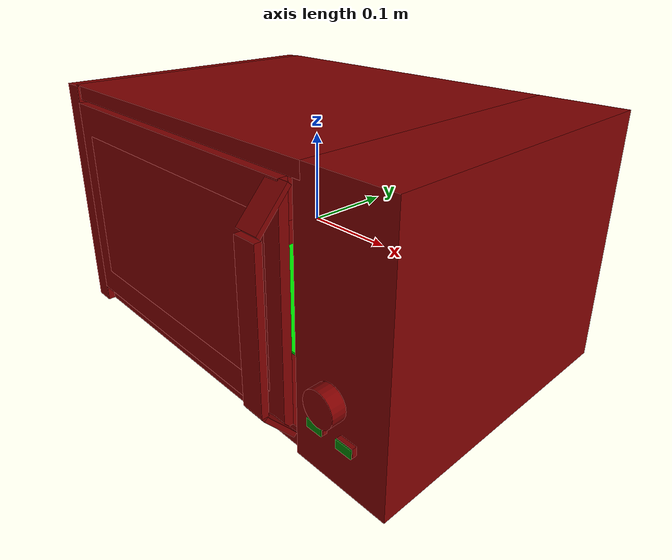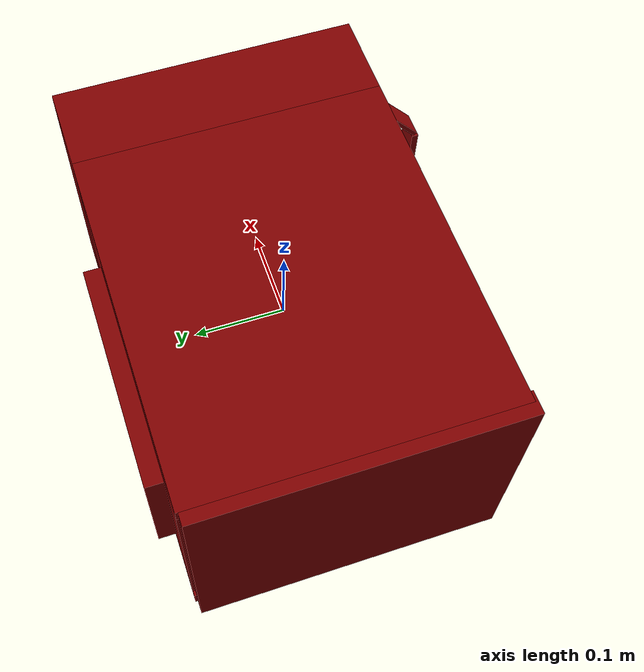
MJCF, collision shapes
<mujoco model="model">
  <compiler angle="radian"/>
  <asset>
    <mesh file="visuals/door.obj" name="door_vis"/>
    <mesh file="visuals/door_Clear.obj" name="door_Clear_vis"/>
    <mesh file="visuals/Body001.obj" name="Body001_vis"/>
    <mesh file="visuals/Button001.obj" name="Button001_vis"/>
    <mesh file="visuals/Button002.obj" name="Button002_vis"/>
    <mesh file="visuals/Disc001.obj" name="Disc001_vis"/>
    <mesh file="visuals/Knob001.obj" name="Knob001_vis"/>
    <texture file="visuals/T_BC001.png" name="Body001_material" type="2d"/>
    <material name="Body001_material" rgba="1 1 1 1.0" texture="Body001_material" shininess="0.5873101949691772" specular="0.3103448502657381"/>
    <texture file="visuals/T_BC001.png" name="door_material" type="2d"/>
    <material name="door_material" rgba="1 1 1 1.0" texture="door_material" shininess="0.5873101949691772" specular="0.3103448502657381"/>
    <material name="door_Clear_material" rgba="0.04224399849772453 0.04224399849772453 0.04224399849772453 0.8961352705955505" shininess="0.5" specular="0.3103448502657381"/>
    <texture file="visuals/T_BC001.png" name="Button001_material" type="2d"/>
    <material name="Button001_material" rgba="1 1 1 1.0" texture="Button001_material" shininess="0.5873101949691772" specular="0.3103448502657381"/>
    <texture file="visuals/T_BC001.png" name="Button002_material" type="2d"/>
    <material name="Button002_material" rgba="1 1 1 1.0" texture="Button002_material" shininess="0.5873101949691772" specular="0.3103448502657381"/>
    <texture file="visuals/T_BC001.png" name="Disc001_material" type="2d"/>
    <material name="Disc001_material" rgba="1 1 1 1.0" texture="Disc001_material" shininess="0.5873101949691772" specular="0.3103448502657381"/>
    <texture file="visuals/T_BC001.png" name="Knob001_material" type="2d"/>
    <material name="Knob001_material" rgba="1 1 1 1.0" texture="Knob001_material" shininess="0.5873101949691772" specular="0.3103448502657381"/>
  </asset>
  <default>
    <default class="visual">
      <geom conaffinity="0" contype="0" group="1" type="mesh"/>
    </default>
    <default class="collision">
      <geom group="0" rgba="0.5 0 0 0.5"/>
    </default>
    <default class="spawn">
      <geom group="0" rgba="1 1 1 0.5" contype="0" conaffinity="0"/>
      <site group="0" rgba="1 1 1 0.5"/>
    </default>
    <default class="region">
      <geom group="1" conaffinity="0" contype="0" rgba="0 1 0 0"/>
    </default>
  </default>
  <worldbody>
    <body>
      <body name="object">
        <geom class="collision" type="box" pos="-0.036620 0.011148 -0.106732" size="0.10410761833190918 0.10410761833190918 0.001198530662804842" quat="1.0 0.0 0.0 0.0" name="tray" rgba="0 1 0 0.5"/>
        <geom class="collision" type="box" pos="0.180716 -0.169160 -0.082826" size="0.008857482112944126 0.0005799151258543134 0.004599660634994507" quat="1.0 0.0 0.0 0.0" name="start_button" rgba="0.0 0.5 0 0.5"/>
        <geom class="collision" type="box" pos="0.214809 -0.169160 -0.082826" size="0.008857470005750656 0.0005799143109470606 0.004599660634994507" quat="1.0 0.0 0.0 0.0" name="stop_button" rgba="0.0 0.5 0 0.5"/>
        <geom mesh="Body001_vis" type="mesh" solimp="0.998 0.998 0.001" solref="0.001 1" density="100" friction="0.95 0.3 0.1" class="visual" material="Body001_material"/>
        <geom class="collision" type="box" pos="-0.240256 0.006574 0.000578" size="0.012254676781594753 0.16924265027046204 0.13945932686328888" quat="1.0 0.0 0.0 0.0"/>
        <geom class="collision" type="box" pos="0.199921 0.009292 0.000578" size="0.05257977545261383 0.16924265027046204 0.13945931196212769" quat="1.0 0.0 0.0 0.0"/>
        <geom class="collision" type="box" pos="-0.041416 0.011817 -0.127199" size="0.19762252271175385 0.16671735048294067 0.010678996331989765" quat="1.0 0.0 0.0 0.0"/>
        <geom class="collision" type="box" pos="-0.041416 0.009292 0.132171" size="0.19762620329856873 0.16924579441547394 0.00786757841706276" quat="1.0 0.0 0.0 0.0"/>
        <geom class="collision" type="box" pos="-0.056891 0.184429 0.000212" size="0.12500740587711334 0.013472105376422405 0.07326260954141617" quat="1.0 0.0 0.0 0.0"/>
        <geom class="collision" type="box" pos="-0.042261 0.175204 -0.000864" size="0.19103531539440155 0.0033645974472165108 0.1289108395576477" quat="1.0 0.0 0.0 0.0"/>
        <body name="door">
          <joint axis="0.0 0.0 1.0" pos="-0.237417 -0.154437 0.002262" limited="true" name="microjoint" range="-1.5707963267948966 0.0" type="hinge" damping="1" frictionloss="1" armature=".01" stiffness="0.05"/>
          <geom mesh="door_vis" type="mesh" solimp="0.998 0.998 0.001" solref="0.001 1" density="100" friction="0.95 0.3 0.1" class="visual" material="door_material"/>
          <geom class="collision" type="box" pos="-0.041218 -0.161269 0.003964" size="0.17912612855434418 0.00511790718883276 0.11858853697776794" quat="1.0 0.0 0.0 0.0"/>
          <geom class="collision" type="box" pos="0.135335 -0.194597 0.001438" size="0.012881302274763584 0.0036712391301989555 0.08072978258132935" quat="1.0 0.0 0.0 0.0" name="door_handle"/>
          <geom class="collision" type="box" pos="0.135335 -0.178629 0.102902" size="0.012881302274763584 0.002480559516698122 0.02373986877501011" quat="0.9351310729980469 -0.3543020188808441 -0.0 0.0"/>
          <geom class="collision" type="box" pos="0.135335 -0.178157 -0.099191" size="0.012881302274763584 0.002480559516698122 0.02373986877501011" quat="0.9338890910148621 0.3575628399848938 0.0 0.0"/>
          <body name="door_Clear">
            <geom mesh="door_Clear_vis" type="mesh" solimp="0.998 0.998 0.001" solref="0.001 1" density="100" friction="0.95 0.3 0.1" class="visual" material="door_Clear_material"/>
            <geom class="collision" type="box" pos="-0.040200 -0.157869 0.001438" size="0.1582401692867279 0.008518068119883537 0.0861717015504837" quat="1.0 0.0 0.0 0.0"/>
          </body>
        </body>
        <body name="Button001">
          <joint axis="0.0 1.0 0.0" pos="0.180577 -0.164826 -0.082875" limited="true" name="Button001_joint" range="0.0 0.003" type="slide" damping="1" frictionloss="1" armature=".01" stiffness="0.05"/>
          <geom mesh="Button001_vis" type="mesh" solimp="0.998 0.998 0.001" solref="0.001 1" density="100" friction="0.95 0.3 0.1" class="visual" material="Button001_material"/>
          <geom class="collision" type="box" pos="0.180716 -0.165515 -0.082826" size="0.008857444860041142 0.0022924677468836308 0.004599660634994507" quat="1.0 0.0 0.0 0.0"/>
        </body>
        <body name="Button002">
          <joint axis="0.0 1.0 0.0" pos="0.214953 -0.164826 -0.082875" limited="true" name="Button002_joint" range="0.0 0.003" type="slide" damping="1" frictionloss="1" armature=".01" stiffness="0.05"/>
          <geom mesh="Button002_vis" type="mesh" solimp="0.998 0.998 0.001" solref="0.001 1" density="100" friction="0.95 0.3 0.1" class="visual" material="Button002_material"/>
          <geom class="collision" type="box" pos="0.214809 -0.165515 -0.082826" size="0.008857456967234612 0.0022924705408513546 0.004599660634994507" quat="1.0 0.0 0.0 0.0"/>
        </body>
        <body name="Disc001">
          <joint axis="0.0 0.0 1.0" pos="-0.036152 0.011287 -0.111273" limited="false" name="Disc001_joint" range="0 360" type="hinge" damping="1" frictionloss="1" armature=".01" stiffness="0.05"/>
          <geom mesh="Disc001_vis" type="mesh" solimp="0.998 0.998 0.001" solref="0.001 1" density="100" friction="0.95 0.3 0.1" class="visual" material="Disc001_material"/>
          <geom class="collision" type="cylinder" pos="-0.036620 0.011148 -0.112316" size="0.10410761833190918 0.0018565341597422957" quat="1.0 0.0 0.0 0.0"/>
        </body>
        <body name="Knob001">
          <joint axis="0.0 1.0 0.0" pos="0.197893 -0.172757 -0.047759" limited="true" name="Knob001_joint" range="0.0 5.410520681182422" type="hinge" damping="0.05" armature="0.001"/>
          <geom mesh="Knob001_vis" type="mesh" solimp="0.998 0.998 0.001" solref="0.001 1" density="100" friction="0.95 0.3 0.1" class="visual" material="Knob001_material"/>
          <geom class="collision" type="cylinder" pos="0.197948 -0.174234 -0.047630" size="0.017178788781166077 0.007346022874116898" quat="0.7071067094802856 0.7071068286895752 0.0 0.0"/>
        </body>
        <geom class="region" name="reg_main" type="box" pos="-5.0000000000050004e-06 0.01601799999999999 0.0" size="0.252506 0.18240499999999998 0.140038"/>
        <geom class="region" name="reg_int" type="box" pos="-0.040859000000000006 0.00846100000000001 0.0036409999999999984" size="0.187812 0.165342 0.119639"/>
      </body>
    </body>
  </worldbody>
  <actuator>
    <motor name="microjoint_actuator" joint="microjoint" gear="5"/>
    <motor name="Button001_joint_actuator" joint="Button001_joint" gear="0.1"/>
    <motor name="Button002_joint_actuator" joint="Button002_joint" gear="0.1"/>
    <motor name="Disc001_joint_actuator" joint="Disc001_joint" gear="10"/>
    <motor name="Knob001_joint_actuator" joint="Knob001_joint" gear="10"/>
  </actuator>
</mujoco>
